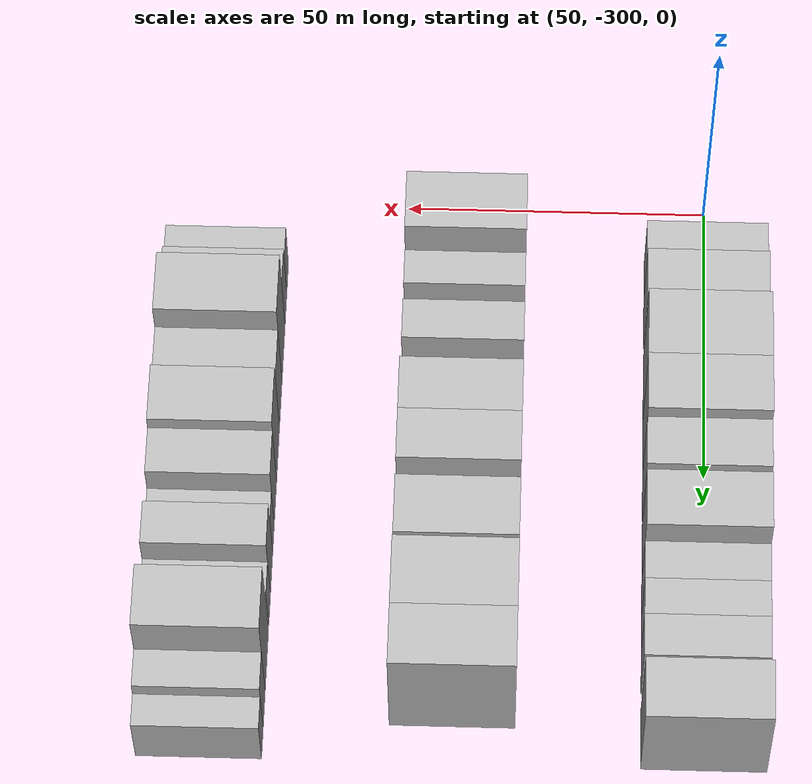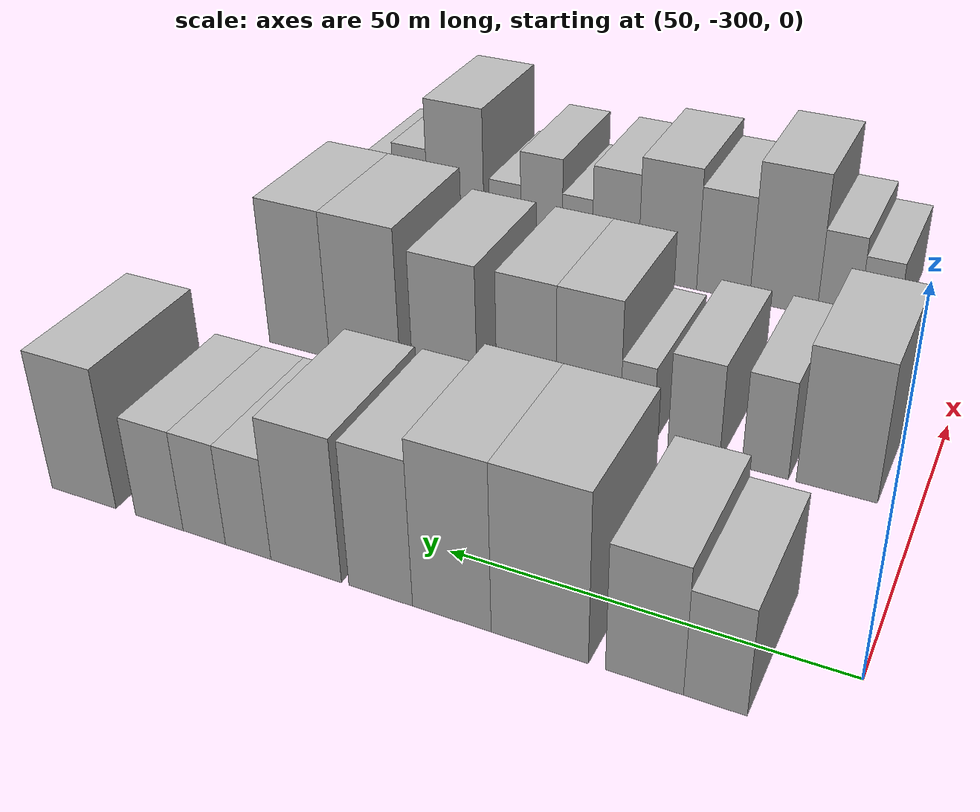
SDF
<sdf version="1.6">
 <world name="default">
  <model name="building_11">
   <static>1</static>
   <pose>50.0000 -286.5284 0 0.000000 0.000000 0.000000</pose>
   <link name="link">
    <pose>0 0 7.50 0 0 0</pose>
    <collision name="collision"><geometry><box><size>20.0000 7.0517 15.0000</size></box></geometry></collision>
    <visual name="visual">
     <cast_shadows>0</cast_shadows>
     <geometry><box><size>20.0000 7.0517 15.0000</size></box></geometry>
     <material>
      <script>
       <uri>model://HANNAS_wall/materials/scripts</uri>
       <uri>model://HANNAS_wall/materials/textures</uri>
       <name>vrc/HANNAS_wall</name>
      </script>
     </material>
    </visual>
   </link>
  </model>
  <model name="building_12">
   <static>1</static>
   <pose>50.0000 -278.5229 0 0.000000 0.000000 0.000000</pose>
   <link name="link">
    <pose>0 0 9.00 0 0 0</pose>
    <collision name="collision"><geometry><box><size>20.0000 8.9593 18.0000</size></box></geometry></collision>
    <visual name="visual">
     <cast_shadows>0</cast_shadows>
     <geometry><box><size>20.0000 8.9593 18.0000</size></box></geometry>
     <material>
      <script>
       <uri>model://HANNAS_wall/materials/scripts</uri>
       <uri>model://HANNAS_wall/materials/textures</uri>
       <name>vrc/HANNAS_wall</name>
      </script>
     </material>
    </visual>
   </link>
  </model>
  <model name="building_13">
   <static>1</static>
   <pose>50.0000 -266.1553 0 0.000000 0.000000 0.000000</pose>
   <link name="link">
    <pose>0 0 12.00 0 0 0</pose>
    <collision name="collision"><geometry><box><size>20.0000 11.7759 24.0000</size></box></geometry></collision>
    <visual name="visual">
     <cast_shadows>0</cast_shadows>
     <geometry><box><size>20.0000 11.7759 24.0000</size></box></geometry>
     <material>
      <script>
       <uri>model://HANNAS_wall/materials/scripts</uri>
       <uri>model://HANNAS_wall/materials/textures</uri>
       <name>vrc/HANNAS_wall</name>
      </script>
     </material>
    </visual>
   </link>
  </model>
  <model name="building_14">
   <static>1</static>
   <pose>50.0000 -255.2726 0 0.000000 0.000000 0.000000</pose>
   <link name="link">
    <pose>0 0 12.00 0 0 0</pose>
    <collision name="collision"><geometry><box><size>20.0000 9.9895 24.0000</size></box></geometry></collision>
    <visual name="visual">
     <cast_shadows>0</cast_shadows>
     <geometry><box><size>20.0000 9.9895 24.0000</size></box></geometry>
     <material>
      <script>
       <uri>model://HANNAS_wall/materials/scripts</uri>
       <uri>model://HANNAS_wall/materials/textures</uri>
       <name>vrc/HANNAS_wall</name>
      </script>
     </material>
    </visual>
   </link>
  </model>
  <model name="building_15">
   <static>1</static>
   <pose>50.0000 -246.0600 0 0.000000 0.000000 0.000000</pose>
   <link name="link">
    <pose>0 0 10.50 0 0 0</pose>
    <collision name="collision"><geometry><box><size>20.0000 8.4355 21.0000</size></box></geometry></collision>
    <visual name="visual">
     <cast_shadows>0</cast_shadows>
     <geometry><box><size>20.0000 8.4355 21.0000</size></box></geometry>
     <material>
      <script>
       <uri>model://HANNAS_wall/materials/scripts</uri>
       <uri>model://HANNAS_wall/materials/textures</uri>
       <name>vrc/HANNAS_wall</name>
      </script>
     </material>
    </visual>
   </link>
  </model>
  <model name="building_16">
   <static>1</static>
   <pose>50.0000 -235.9735 0 0.000000 0.000000 0.000000</pose>
   <link name="link">
    <pose>0 0 10.50 0 0 0</pose>
    <collision name="collision"><geometry><box><size>20.0000 9.7375 21.0000</size></box></geometry></collision>
    <visual name="visual">
     <cast_shadows>0</cast_shadows>
     <geometry><box><size>20.0000 9.7375 21.0000</size></box></geometry>
     <material>
      <script>
       <uri>model://HANNAS_wall/materials/scripts</uri>
       <uri>model://HANNAS_wall/materials/textures</uri>
       <name>vrc/HANNAS_wall</name>
      </script>
     </material>
    </visual>
   </link>
  </model>
  <model name="building_17">
   <static>1</static>
   <pose>50.0000 -227.8595 0 0.000000 0.000000 0.000000</pose>
   <link name="link">
    <pose>0 0 7.50 0 0 0</pose>
    <collision name="collision"><geometry><box><size>20.0000 6.4905 15.0000</size></box></geometry></collision>
    <visual name="visual">
     <cast_shadows>0</cast_shadows>
     <geometry><box><size>20.0000 6.4905 15.0000</size></box></geometry>
     <material>
      <script>
       <uri>model://HANNAS_wall/materials/scripts</uri>
       <uri>model://HANNAS_wall/materials/textures</uri>
       <name>vrc/HANNAS_wall</name>
      </script>
     </material>
    </visual>
   </link>
  </model>
  <model name="building_18">
   <static>1</static>
   <pose>50.0000 -221.5160 0 0.000000 0.000000 0.000000</pose>
   <link name="link">
    <pose>0 0 7.50 0 0 0</pose>
    <collision name="collision"><geometry><box><size>20.0000 6.1965 15.0000</size></box></geometry></collision>
    <visual name="visual">
     <cast_shadows>0</cast_shadows>
     <geometry><box><size>20.0000 6.1965 15.0000</size></box></geometry>
     <material>
      <script>
       <uri>model://HANNAS_wall/materials/scripts</uri>
       <uri>model://HANNAS_wall/materials/textures</uri>
       <name>vrc/HANNAS_wall</name>
      </script>
     </material>
    </visual>
   </link>
  </model>
  <model name="building_19">
   <static>1</static>
   <pose>50.0000 -214.8344 0 0.000000 0.000000 0.000000</pose>
   <link name="link">
    <pose>0 0 7.50 0 0 0</pose>
    <collision name="collision"><geometry><box><size>20.0000 7.1667 15.0000</size></box></geometry></collision>
    <visual name="visual">
     <cast_shadows>0</cast_shadows>
     <geometry><box><size>20.0000 7.1667 15.0000</size></box></geometry>
     <material>
      <script>
       <uri>model://HANNAS_wall/materials/scripts</uri>
       <uri>model://HANNAS_wall/materials/textures</uri>
       <name>vrc/HANNAS_wall</name>
      </script>
     </material>
    </visual>
   </link>
  </model>
  <model name="building_20">
   <static>1</static>
   <pose>50.0000 -203.2203 0 0.000000 0.000000 0.000000</pose>
   <link name="link">
    <pose>0 0 10.50 0 0 0</pose>
    <collision name="collision"><geometry><box><size>20.0000 10.0615 21.0000</size></box></geometry></collision>
    <visual name="visual">
     <cast_shadows>0</cast_shadows>
     <geometry><box><size>20.0000 10.0615 21.0000</size></box></geometry>
     <material>
      <script>
       <uri>model://HANNAS_wall/materials/scripts</uri>
       <uri>model://HANNAS_wall/materials/textures</uri>
       <name>vrc/HANNAS_wall</name>
      </script>
     </material>
    </visual>
   </link>
  </model>
  <model name="building_94">
   <static>1</static>
   <pose>90.0000 -289.5939 0 0.000000 0.000000 0.000000</pose>
   <link name="link">
    <pose>0 0 10.50 0 0 0</pose>
    <collision name="collision"><geometry><box><size>20.0000 10.4972 21.0000</size></box></geometry></collision>
    <visual name="visual">
     <cast_shadows>0</cast_shadows>
     <geometry><box><size>20.0000 10.4972 21.0000</size></box></geometry>
     <material>
      <script>
       <uri>model://HANNAS_wall/materials/scripts</uri>
       <uri>model://HANNAS_wall/materials/textures</uri>
       <name>vrc/HANNAS_wall</name>
      </script>
     </material>
    </visual>
   </link>
  </model>
  <model name="building_95">
   <static>1</static>
   <pose>90.0000 -280.2260 0 0.000000 0.000000 0.000000</pose>
   <link name="link">
    <pose>0 0 7.50 0 0 0</pose>
    <collision name="collision"><geometry><box><size>20.0000 6.2388 15.0000</size></box></geometry></collision>
    <visual name="visual">
     <cast_shadows>0</cast_shadows>
     <geometry><box><size>20.0000 6.2388 15.0000</size></box></geometry>
     <material>
      <script>
       <uri>model://HANNAS_wall/materials/scripts</uri>
       <uri>model://HANNAS_wall/materials/textures</uri>
       <name>vrc/HANNAS_wall</name>
      </script>
     </material>
    </visual>
   </link>
  </model>
  <model name="building_96">
   <static>1</static>
   <pose>90.0000 -270.5159 0 0.000000 0.000000 0.000000</pose>
   <link name="link">
    <pose>0 0 7.50 0 0 0</pose>
    <collision name="collision"><geometry><box><size>20.0000 7.1814 15.0000</size></box></geometry></collision>
    <visual name="visual">
     <cast_shadows>0</cast_shadows>
     <geometry><box><size>20.0000 7.1814 15.0000</size></box></geometry>
     <material>
      <script>
       <uri>model://HANNAS_wall/materials/scripts</uri>
       <uri>model://HANNAS_wall/materials/textures</uri>
       <name>vrc/HANNAS_wall</name>
      </script>
     </material>
    </visual>
   </link>
  </model>
  <model name="building_97">
   <static>1</static>
   <pose>90.0000 -262.5241 0 0.000000 0.000000 0.000000</pose>
   <link name="link">
    <pose>0 0 6.00 0 0 0</pose>
    <collision name="collision"><geometry><box><size>20.0000 4.8022 12.0000</size></box></geometry></collision>
    <visual name="visual">
     <cast_shadows>0</cast_shadows>
     <geometry><box><size>20.0000 4.8022 12.0000</size></box></geometry>
     <material>
      <script>
       <uri>model://HANNAS_wall/materials/scripts</uri>
       <uri>model://HANNAS_wall/materials/textures</uri>
       <name>vrc/HANNAS_wall</name>
      </script>
     </material>
    </visual>
   </link>
  </model>
  <model name="building_98">
   <static>1</static>
   <pose>90.0000 -255.4423 0 0.000000 0.000000 0.000000</pose>
   <link name="link">
    <pose>0 0 10.50 0 0 0</pose>
    <collision name="collision"><geometry><box><size>20.0000 9.3615 21.0000</size></box></geometry></collision>
    <visual name="visual">
     <cast_shadows>0</cast_shadows>
     <geometry><box><size>20.0000 9.3615 21.0000</size></box></geometry>
     <material>
      <script>
       <uri>model://HANNAS_wall/materials/scripts</uri>
       <uri>model://HANNAS_wall/materials/textures</uri>
       <name>vrc/HANNAS_wall</name>
      </script>
     </material>
    </visual>
   </link>
  </model>
  <model name="building_99">
   <static>1</static>
   <pose>90.0000 -246.3172 0 0.000000 0.000000 0.000000</pose>
   <link name="link">
    <pose>0 0 10.50 0 0 0</pose>
    <collision name="collision"><geometry><box><size>20.0000 8.8886 21.0000</size></box></geometry></collision>
    <visual name="visual">
     <cast_shadows>0</cast_shadows>
     <geometry><box><size>20.0000 8.8886 21.0000</size></box></geometry>
     <material>
      <script>
       <uri>model://HANNAS_wall/materials/scripts</uri>
       <uri>model://HANNAS_wall/materials/textures</uri>
       <name>vrc/HANNAS_wall</name>
      </script>
     </material>
    </visual>
   </link>
  </model>
  <model name="building_100">
   <static>1</static>
   <pose>90.0000 -233.7819 0 0.000000 0.000000 0.000000</pose>
   <link name="link">
    <pose>0 0 10.50 0 0 0</pose>
    <collision name="collision"><geometry><box><size>20.0000 10.1820 21.0000</size></box></geometry></collision>
    <visual name="visual">
     <cast_shadows>0</cast_shadows>
     <geometry><box><size>20.0000 10.1820 21.0000</size></box></geometry>
     <material>
      <script>
       <uri>model://HANNAS_wall/materials/scripts</uri>
       <uri>model://HANNAS_wall/materials/textures</uri>
       <name>vrc/HANNAS_wall</name>
      </script>
     </material>
    </visual>
   </link>
  </model>
  <model name="building_101">
   <static>1</static>
   <pose>90.0000 -220.8205 0 0.000000 0.000000 0.000000</pose>
   <link name="link">
    <pose>0 0 12.00 0 0 0</pose>
    <collision name="collision"><geometry><box><size>20.0000 11.7408 24.0000</size></box></geometry></collision>
    <visual name="visual">
     <cast_shadows>0</cast_shadows>
     <geometry><box><size>20.0000 11.7408 24.0000</size></box></geometry>
     <material>
      <script>
       <uri>model://HANNAS_wall/materials/scripts</uri>
       <uri>model://HANNAS_wall/materials/textures</uri>
       <name>vrc/HANNAS_wall</name>
      </script>
     </material>
    </visual>
   </link>
  </model>
  <model name="building_102">
   <static>1</static>
   <pose>90.0000 -209.8123 0 0.000000 0.000000 0.000000</pose>
   <link name="link">
    <pose>0 0 12.00 0 0 0</pose>
    <collision name="collision"><geometry><box><size>20.0000 10.2757 24.0000</size></box></geometry></collision>
    <visual name="visual">
     <cast_shadows>0</cast_shadows>
     <geometry><box><size>20.0000 10.2757 24.0000</size></box></geometry>
     <material>
      <script>
       <uri>model://HANNAS_wall/materials/scripts</uri>
       <uri>model://HANNAS_wall/materials/textures</uri>
       <name>vrc/HANNAS_wall</name>
      </script>
     </material>
    </visual>
   </link>
  </model>
  <model name="building_177">
   <static>1</static>
   <pose>130.0000 -285.8014 0 0.000000 0.000000 0.000000</pose>
   <link name="link">
    <pose>0 0 6.00 0 0 0</pose>
    <collision name="collision"><geometry><box><size>20.0000 5.7899 12.0000</size></box></geometry></collision>
    <visual name="visual">
     <cast_shadows>0</cast_shadows>
     <geometry><box><size>20.0000 5.7899 12.0000</size></box></geometry>
     <material>
      <script>
       <uri>model://HANNAS_wall/materials/scripts</uri>
       <uri>model://HANNAS_wall/materials/textures</uri>
       <name>vrc/HANNAS_wall</name>
      </script>
     </material>
    </visual>
   </link>
  </model>
  <model name="building_178">
   <static>1</static>
   <pose>130.0000 -279.7529 0 0.000000 0.000000 0.000000</pose>
   <link name="link">
    <pose>0 0 7.50 0 0 0</pose>
    <collision name="collision"><geometry><box><size>20.0000 6.3071 15.0000</size></box></geometry></collision>
    <visual name="visual">
     <cast_shadows>0</cast_shadows>
     <geometry><box><size>20.0000 6.3071 15.0000</size></box></geometry>
     <material>
      <script>
       <uri>model://HANNAS_wall/materials/scripts</uri>
       <uri>model://HANNAS_wall/materials/textures</uri>
       <name>vrc/HANNAS_wall</name>
      </script>
     </material>
    </visual>
   </link>
  </model>
  <model name="building_179">
   <static>1</static>
   <pose>130.0000 -271.3128 0 0.000000 0.000000 0.000000</pose>
   <link name="link">
    <pose>0 0 12.00 0 0 0</pose>
    <collision name="collision"><geometry><box><size>20.0000 10.5730 24.0000</size></box></geometry></collision>
    <visual name="visual">
     <cast_shadows>0</cast_shadows>
     <geometry><box><size>20.0000 10.5730 24.0000</size></box></geometry>
     <material>
      <script>
       <uri>model://HANNAS_wall/materials/scripts</uri>
       <uri>model://HANNAS_wall/materials/textures</uri>
       <name>vrc/HANNAS_wall</name>
      </script>
     </material>
    </visual>
   </link>
  </model>
  <model name="building_180">
   <static>1</static>
   <pose>130.0000 -261.7200 0 0.000000 0.000000 0.000000</pose>
   <link name="link">
    <pose>0 0 9.00 0 0 0</pose>
    <collision name="collision"><geometry><box><size>20.0000 8.6127 18.0000</size></box></geometry></collision>
    <visual name="visual">
     <cast_shadows>0</cast_shadows>
     <geometry><box><size>20.0000 8.6127 18.0000</size></box></geometry>
     <material>
      <script>
       <uri>model://HANNAS_wall/materials/scripts</uri>
       <uri>model://HANNAS_wall/materials/textures</uri>
       <name>vrc/HANNAS_wall</name>
      </script>
     </material>
    </visual>
   </link>
  </model>
  <model name="building_181">
   <static>1</static>
   <pose>130.0000 -252.5011 0 0.000000 0.000000 0.000000</pose>
   <link name="link">
    <pose>0 0 10.50 0 0 0</pose>
    <collision name="collision"><geometry><box><size>20.0000 9.8249 21.0000</size></box></geometry></collision>
    <visual name="visual">
     <cast_shadows>0</cast_shadows>
     <geometry><box><size>20.0000 9.8249 21.0000</size></box></geometry>
     <material>
      <script>
       <uri>model://HANNAS_wall/materials/scripts</uri>
       <uri>model://HANNAS_wall/materials/textures</uri>
       <name>vrc/HANNAS_wall</name>
      </script>
     </material>
    </visual>
   </link>
  </model>
  <model name="building_182">
   <static>1</static>
   <pose>130.0000 -243.6366 0 0.000000 0.000000 0.000000</pose>
   <link name="link">
    <pose>0 0 9.00 0 0 0</pose>
    <collision name="collision"><geometry><box><size>20.0000 7.9043 18.0000</size></box></geometry></collision>
    <visual name="visual">
     <cast_shadows>0</cast_shadows>
     <geometry><box><size>20.0000 7.9043 18.0000</size></box></geometry>
     <material>
      <script>
       <uri>model://HANNAS_wall/materials/scripts</uri>
       <uri>model://HANNAS_wall/materials/textures</uri>
       <name>vrc/HANNAS_wall</name>
      </script>
     </material>
    </visual>
   </link>
  </model>
  <model name="building_183">
   <static>1</static>
   <pose>130.0000 -237.0806 0 0.000000 0.000000 0.000000</pose>
   <link name="link">
    <pose>0 0 6.00 0 0 0</pose>
    <collision name="collision"><geometry><box><size>20.0000 5.2076 12.0000</size></box></geometry></collision>
    <visual name="visual">
     <cast_shadows>0</cast_shadows>
     <geometry><box><size>20.0000 5.2076 12.0000</size></box></geometry>
     <material>
      <script>
       <uri>model://HANNAS_wall/materials/scripts</uri>
       <uri>model://HANNAS_wall/materials/textures</uri>
       <name>vrc/HANNAS_wall</name>
      </script>
     </material>
    </visual>
   </link>
  </model>
  <model name="building_184">
   <static>1</static>
   <pose>130.0000 -230.8010 0 0.000000 0.000000 0.000000</pose>
   <link name="link">
    <pose>0 0 9.00 0 0 0</pose>
    <collision name="collision"><geometry><box><size>20.0000 7.3517 18.0000</size></box></geometry></collision>
    <visual name="visual">
     <cast_shadows>0</cast_shadows>
     <geometry><box><size>20.0000 7.3517 18.0000</size></box></geometry>
     <material>
      <script>
       <uri>model://HANNAS_wall/materials/scripts</uri>
       <uri>model://HANNAS_wall/materials/textures</uri>
       <name>vrc/HANNAS_wall</name>
      </script>
     </material>
    </visual>
   </link>
  </model>
  <model name="building_185">
   <static>1</static>
   <pose>130.0000 -224.3022 0 0.000000 0.000000 0.000000</pose>
   <link name="link">
    <pose>0 0 6.00 0 0 0</pose>
    <collision name="collision"><geometry><box><size>20.0000 5.6459 12.0000</size></box></geometry></collision>
    <visual name="visual">
     <cast_shadows>0</cast_shadows>
     <geometry><box><size>20.0000 5.6459 12.0000</size></box></geometry>
     <material>
      <script>
       <uri>model://HANNAS_wall/materials/scripts</uri>
       <uri>model://HANNAS_wall/materials/textures</uri>
       <name>vrc/HANNAS_wall</name>
      </script>
     </material>
    </visual>
   </link>
  </model>
  <model name="building_186">
   <static>1</static>
   <pose>130.0000 -215.2591 0 0.000000 0.000000 0.000000</pose>
   <link name="link">
    <pose>0 0 12.00 0 0 0</pose>
    <collision name="collision"><geometry><box><size>20.0000 10.4404 24.0000</size></box></geometry></collision>
    <visual name="visual">
     <cast_shadows>0</cast_shadows>
     <geometry><box><size>20.0000 10.4404 24.0000</size></box></geometry>
     <material>
      <script>
       <uri>model://HANNAS_wall/materials/scripts</uri>
       <uri>model://HANNAS_wall/materials/textures</uri>
       <name>vrc/HANNAS_wall</name>
      </script>
     </material>
    </visual>
   </link>
  </model>
  <model name="building_187">
   <static>1</static>
   <pose>130.0000 -206.8695 0 0.000000 0.000000 0.000000</pose>
   <link name="link">
    <pose>0 0 7.50 0 0 0</pose>
    <collision name="collision"><geometry><box><size>20.0000 6.3388 15.0000</size></box></geometry></collision>
    <visual name="visual">
     <cast_shadows>0</cast_shadows>
     <geometry><box><size>20.0000 6.3388 15.0000</size></box></geometry>
     <material>
      <script>
       <uri>model://HANNAS_wall/materials/scripts</uri>
       <uri>model://HANNAS_wall/materials/textures</uri>
       <name>vrc/HANNAS_wall</name>
      </script>
     </material>
    </visual>
   </link>
  </model>
  <model name="building_188">
   <static>1</static>
   <pose>130.0000 -201.0095 0 0.000000 0.000000 0.000000</pose>
   <link name="link">
    <pose>0 0 6.00 0 0 0</pose>
    <collision name="collision"><geometry><box><size>20.0000 5.3813 12.0000</size></box></geometry></collision>
    <visual name="visual">
     <cast_shadows>0</cast_shadows>
     <geometry><box><size>20.0000 5.3813 12.0000</size></box></geometry>
     <material>
      <script>
       <uri>model://HANNAS_wall/materials/scripts</uri>
       <uri>model://HANNAS_wall/materials/textures</uri>
       <name>vrc/HANNAS_wall</name>
      </script>
     </material>
    </visual>
   </link>
  </model>
 </world>
</sdf>
